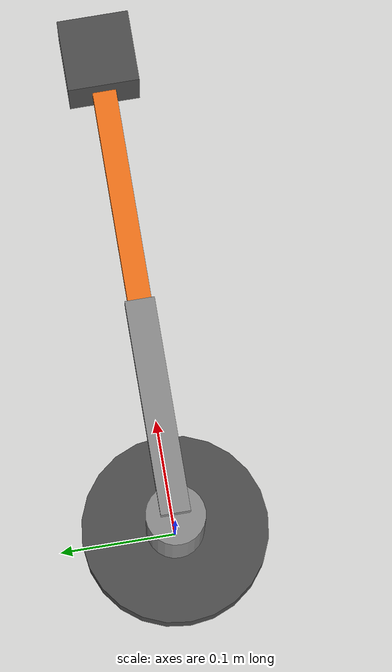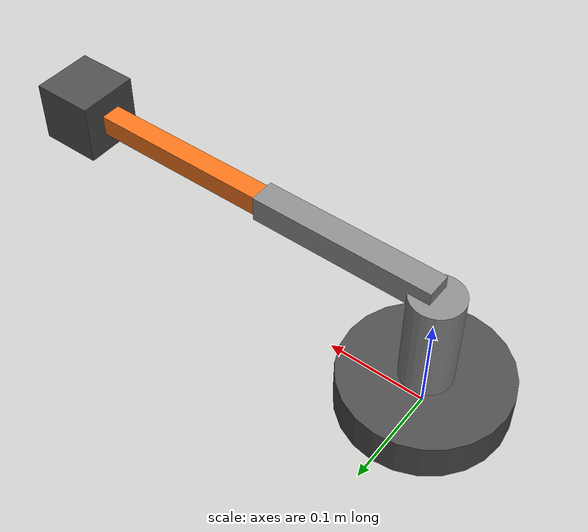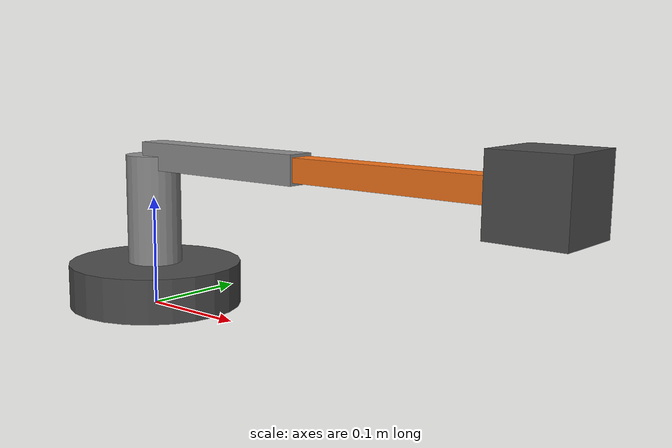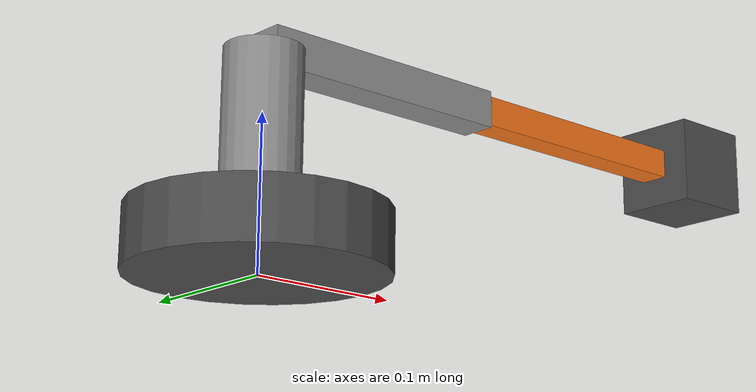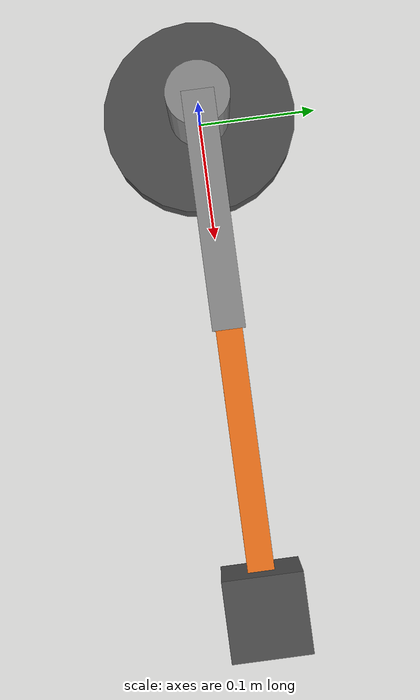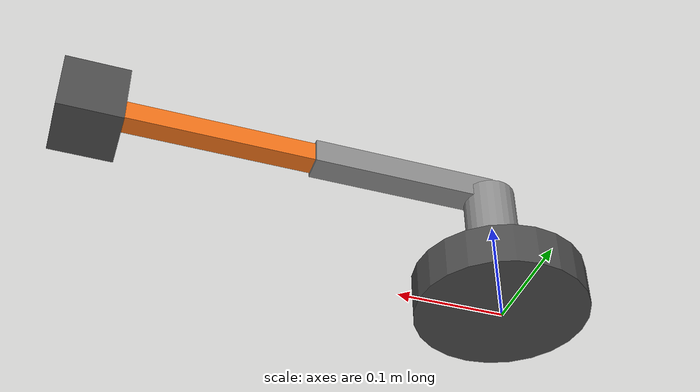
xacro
<?xml version="1.0"?>
<robot xmlns:xacro="http://www.ros.org/wiki/xacro" name="martijns_arm">

  <!-- ====== AFMETINGEN (meters / kg) ====== -->
  <xacro:property name="base_radius"       value="0.08"/>
  <xacro:property name="base_height"       value="0.04"/>
  <xacro:property name="post_radius"       value="0.025"/>
  <xacro:property name="post_height"       value="0.10"/>
  <xacro:property name="upper_length"      value="0.18"/>
  <xacro:property name="upper_thickness"   value="0.025"/>
  <xacro:property name="forearm_length"    value="0.18"/>
  <xacro:property name="forearm_thickness" value="0.020"/>
  <xacro:property name="ee_size"           value="0.06"/>

  <xacro:property name="base_mass"    value="1.0"/>
  <xacro:property name="post_mass"    value="0.4"/>
  <xacro:property name="upper_mass"   value="0.5"/>
  <xacro:property name="forearm_mass" value="0.3"/>
  <xacro:property name="ee_mass"      value="0.1"/>

  <xacro:property name="joint_effort"   value="5.0"/>
  <xacro:property name="joint_velocity" value="2.0"/>

  <!-- ====== HELPERS ====== -->
  <xacro:macro name="cylinder_inertial" params="m r h">
    <inertial>
      <mass value="${m}"/>
      <inertia
        ixx="${m * (3*r*r + h*h) / 12}" iyy="${m * (3*r*r + h*h) / 12}"
        izz="${m * r*r / 2}"
        ixy="0" ixz="0" iyz="0"/>
    </inertial>
  </xacro:macro>

  <xacro:macro name="box_inertial" params="m x y z">
    <inertial>
      <mass value="${m}"/>
      <inertia
        ixx="${m * (y*y + z*z) / 12}"
        iyy="${m * (x*x + z*z) / 12}"
        izz="${m * (x*x + y*y) / 12}"
        ixy="0" ixz="0" iyz="0"/>
    </inertial>
  </xacro:macro>

  <!-- ====== MATERIALS ====== -->
  <material name="grey">      <color rgba="0.55 0.55 0.55 1"/></material>
  <material name="dark_grey"> <color rgba="0.30 0.30 0.30 1"/></material>
  <material name="orange">    <color rgba="0.95 0.45 0.10 1"/></material>

  <!-- ====== BASE (vast aan world) ====== -->
  <link name="world"/>

  <link name="base_link">
    <visual>
      <geometry><cylinder radius="${base_radius}" length="${base_height}"/></geometry>
      <origin xyz="0 0 ${base_height/2}"/>
      <material name="dark_grey"/>
    </visual>
    <collision>
      <geometry><cylinder radius="${base_radius}" length="${base_height}"/></geometry>
      <origin xyz="0 0 ${base_height/2}"/>
    </collision>
    <xacro:cylinder_inertial m="${base_mass}" r="${base_radius}" h="${base_height}"/>
  </link>

  <joint name="world_to_base" type="fixed">
    <parent link="world"/>
    <child  link="base_link"/>
  </joint>

  <!-- ====== JOINT 1: M1 — base yaw ====== -->
  <link name="post_link">
    <visual>
      <geometry><cylinder radius="${post_radius}" length="${post_height}"/></geometry>
      <origin xyz="0 0 ${post_height/2}"/>
      <material name="grey"/>
    </visual>
    <collision>
      <geometry><cylinder radius="${post_radius}" length="${post_height}"/></geometry>
      <origin xyz="0 0 ${post_height/2}"/>
    </collision>
    <xacro:cylinder_inertial m="${post_mass}" r="${post_radius}" h="${post_height}"/>
  </link>

  <joint name="joint_1" type="revolute">
    <parent link="base_link"/>
    <child  link="post_link"/>
    <origin xyz="0 0 ${base_height}" rpy="0 0 0"/>
    <axis xyz="0 0 1"/>
    <limit lower="${-pi}" upper="${pi}" effort="${joint_effort}" velocity="${joint_velocity}"/>
    <dynamics damping="0.1" friction="0.05"/>
  </joint>

  <!-- ====== JOINT 2: M2 — shoulder pitch ====== -->
  <link name="upper_link">
    <visual>
      <geometry><box size="${upper_length} ${upper_thickness} ${upper_thickness}"/></geometry>
      <origin xyz="${upper_length/2} 0 0"/>
      <material name="grey"/>
    </visual>
    <collision>
      <geometry><box size="${upper_length} ${upper_thickness} ${upper_thickness}"/></geometry>
      <origin xyz="${upper_length/2} 0 0"/>
    </collision>
    <xacro:box_inertial m="${upper_mass}"
      x="${upper_length}" y="${upper_thickness}" z="${upper_thickness}"/>
  </link>

  <joint name="joint_2" type="revolute">
    <parent link="post_link"/>
    <child  link="upper_link"/>
    <origin xyz="0 0 ${post_height}" rpy="0 0 0"/>
    <axis xyz="0 1 0"/>
    <limit lower="${-pi/2}" upper="${pi/2}" effort="${joint_effort}" velocity="${joint_velocity}"/>
    <dynamics damping="0.2" friction="0.1"/>
  </joint>

  <!-- ====== JOINT 3: M3 — elbow pitch ====== -->
  <link name="forearm_link">
    <visual>
      <geometry><box size="${forearm_length} ${forearm_thickness} ${forearm_thickness}"/></geometry>
      <origin xyz="${forearm_length/2} 0 0"/>
      <material name="orange"/>
    </visual>
    <collision>
      <geometry><box size="${forearm_length} ${forearm_thickness} ${forearm_thickness}"/></geometry>
      <origin xyz="${forearm_length/2} 0 0"/>
    </collision>
    <xacro:box_inertial m="${forearm_mass}"
      x="${forearm_length}" y="${forearm_thickness}" z="${forearm_thickness}"/>
  </link>

  <joint name="joint_3" type="revolute">
    <parent link="upper_link"/>
    <child  link="forearm_link"/>
    <origin xyz="${upper_length} 0 0" rpy="0 0 0"/>
    <axis xyz="0 1 0"/>
    <limit lower="${-pi}" upper="${pi}" effort="${joint_effort}" velocity="${joint_velocity}"/>
    <dynamics damping="0.15" friction="0.08"/>
  </joint>

  <!-- ====== END EFFECTOR ====== -->
  <link name="ee_link">
    <visual>
      <geometry><box size="${ee_size} ${ee_size} ${ee_size}"/></geometry>
      <origin xyz="${ee_size/2} 0 0"/>
      <material name="dark_grey"/>
    </visual>
    <xacro:box_inertial m="${ee_mass}" x="${ee_size}" y="${ee_size}" z="${ee_size}"/>
  </link>

  <joint name="ee_joint" type="fixed">
    <parent link="forearm_link"/>
    <child  link="ee_link"/>
    <origin xyz="${forearm_length} 0 0" rpy="0 0 0"/>
  </joint>

</robot>
